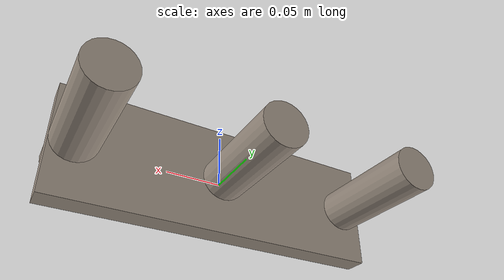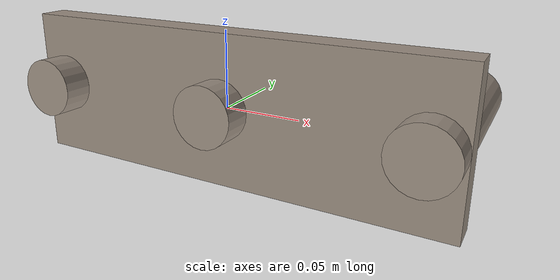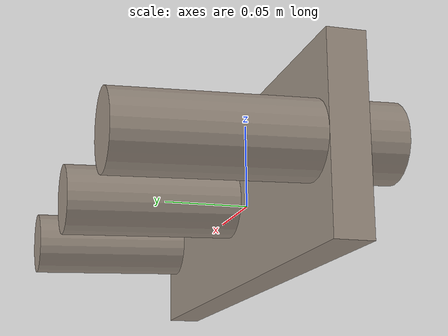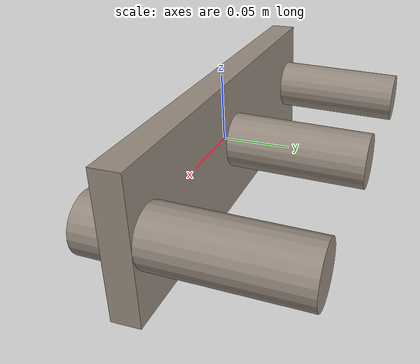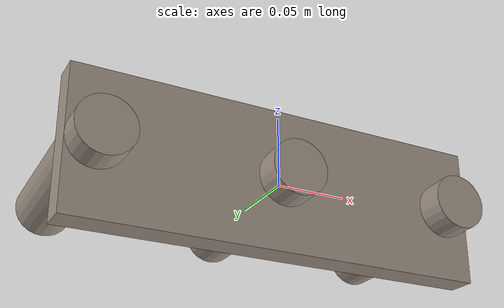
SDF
<?xml version='1.0'?>
<sdf version='1.7'>
  <model name='coat_rack1'>
    <link name='link_1'>
      <kinematic>1</kinematic>
      <inertial>
        <pose>0 0 -0.15 0 -0 0</pose>
        <inertia>
          <ixx>0.00541667</ixx>
          <iyy>0.0520833</iyy>
          <izz>0.0470833</izz>
          <ixy>0</ixy>
          <ixz>0</ixz>
          <iyz>0</iyz>
        </inertia>
        <mass>1</mass>
      </inertial>
      <self_collide>0</self_collide>
      <enable_wind>0</enable_wind>
      <pose>0 0 0 0 -0 0</pose>
      <gravity>1</gravity>
      <visual name='ModelPreview_6::link_1::visual_3'>
        <pose>0.13 0.04 0 -1.6 0 0</pose>
        <geometry>
          <cylinder>
            <radius>0.02</radius>
            <length>0.14</length>
          </cylinder>
        </geometry>
        <material>
          <ambient>0.3 0.85 0.5 1</ambient>
          <diffuse>0.6 0.55 0.5 1</diffuse>
          <shader type='pixel'>
            <normal_map>__default__</normal_map>
          </shader>
          <script>
            <name>ModelPreview_6::link_1::visual2_MATERIAL_</name>
            <uri>__default__</uri>
          </script>
          <specular>0 0 0 1</specular>
          <emissive>0 0 0 1</emissive>
        </material>
        <transparency>0</transparency>
        <cast_shadows>1</cast_shadows>
      </visual>
      <visual name='visual1'>
        <geometry>
          <box>
            <size>0.3 0.02 0.1</size>
          </box>
        </geometry>
        <material>
          <ambient>0.3 0.85 0.5 1</ambient>
          <diffuse>0.6 0.55 0.5 1</diffuse>
          <shader type='pixel'>
            <normal_map>__default__</normal_map>
          </shader>
          <script>
            <name>ModelPreview_6::link_1::visual1_MATERIAL_</name>
            <uri>__default__</uri>
          </script>
          <specular>0 0 0 1</specular>
          <emissive>0 0 0 1</emissive>
        </material>
        <pose>0 0 0 0 -0 0</pose>
        <transparency>0</transparency>
        <cast_shadows>1</cast_shadows>
      </visual>
      <visual name='ModelPreview_6::link_1::visual_2'>
        <pose>0 0.04 0 -1.6 0 0</pose>
        <geometry>
          <cylinder>
            <radius>0.02</radius>
            <length>0.14</length>
          </cylinder>
        </geometry>
        <material>
          <ambient>0.3 0.85 0.5 1</ambient>
          <diffuse>0.6 0.55 0.5 1</diffuse>
          <shader type='pixel'>
            <normal_map>__default__</normal_map>
          </shader>
          <script>
            <name>ModelPreview_6::link_1::visual2_MATERIAL_</name>
            <uri>__default__</uri>
          </script>
          <specular>0 0 0 1</specular>
          <emissive>0 0 0 1</emissive>
        </material>
        <transparency>0</transparency>
        <cast_shadows>1</cast_shadows>
      </visual>
      <visual name='visual2'>
        <pose>-0.13 0.04 0 -1.6 0 0</pose>
        <geometry>
          <cylinder>
            <radius>0.02</radius>
            <length>0.14</length>
          </cylinder>
        </geometry>
        <material>
          <ambient>0.3 0.85 0.5 1</ambient>
          <diffuse>0.6 0.55 0.5 1</diffuse>
          <shader type='pixel'>
            <normal_map>__default__</normal_map>
          </shader>
          <script>
            <name>ModelPreview_6::link_1::visual2_MATERIAL_</name>
            <uri>__default__</uri>
          </script>
          <specular>0 0 0 1</specular>
          <emissive>0 0 0 1</emissive>
        </material>
        <transparency>0</transparency>
        <cast_shadows>1</cast_shadows>
      </visual>
      <collision name='collision_9'>
        <laser_retro>0</laser_retro>
        <max_contacts>10</max_contacts>
        <pose>0.13 0.04 0 -1.6 0 0</pose>
        <geometry>
          <cylinder>
            <radius>0.02</radius>
            <length>0.14</length>
          </cylinder>
        </geometry>
        <surface>
          <friction>
            <ode>
              <mu>1</mu>
              <mu2>1</mu2>
              <fdir1>0 0 0</fdir1>
              <slip1>0</slip1>
              <slip2>0</slip2>
            </ode>
          </friction>
          <bounce>
            <restitution_coefficient>0</restitution_coefficient>
            <threshold>1e+06</threshold>
          </bounce>
          <contact>
            <collide_without_contact>0</collide_without_contact>
            <collide_without_contact_bitmask>1</collide_without_contact_bitmask>
            <collide_bitmask>1</collide_bitmask>
            <ode>
              <soft_cfm>0</soft_cfm>
              <soft_erp>0.2</soft_erp>
              <kp>1e+13</kp>
              <kd>1</kd>
              <max_vel>0.01</max_vel>
              <min_depth>0</min_depth>
            </ode>
            <bullet>
              <split_impulse>1</split_impulse>
              <split_impulse_penetration_threshold>-0.01</split_impulse_penetration_threshold>
              <soft_cfm>0</soft_cfm>
              <soft_erp>0.2</soft_erp>
              <kp>1e+13</kp>
              <kd>1</kd>
            </bullet>
          </contact>
        </surface>
      </collision>
      <collision name='collision_6'>
        <laser_retro>0</laser_retro>
        <max_contacts>10</max_contacts>
        <pose>0 0 0 0 -0 0</pose>
        <geometry>
          <box>
            <size>0.3 0.02 0.1</size>
          </box>
        </geometry>
        <surface>
          <friction>
            <ode>
              <mu>1</mu>
              <mu2>1</mu2>
              <fdir1>0 0 0</fdir1>
              <slip1>0</slip1>
              <slip2>0</slip2>
            </ode>
            <torsional>
            </torsional>
          </friction>
          <bounce>
            <restitution_coefficient>0</restitution_coefficient>
            <threshold>1e+06</threshold>
          </bounce>
          <contact>
            <collide_without_contact>0</collide_without_contact>
            <collide_without_contact_bitmask>1</collide_without_contact_bitmask>
            <collide_bitmask>1</collide_bitmask>
            <ode>
              <soft_cfm>0</soft_cfm>
              <soft_erp>0.2</soft_erp>
              <kp>1e+13</kp>
              <kd>1</kd>
              <max_vel>0.01</max_vel>
              <min_depth>0</min_depth>
            </ode>
            <bullet>
              <split_impulse>1</split_impulse>
              <split_impulse_penetration_threshold>-0.01</split_impulse_penetration_threshold>
              <soft_cfm>0</soft_cfm>
              <soft_erp>0.2</soft_erp>
              <kp>1e+13</kp>
              <kd>1</kd>
            </bullet>
          </contact>
        </surface>
      </collision>
      <collision name='collision_8'>
        <laser_retro>0</laser_retro>
        <max_contacts>10</max_contacts>
        <pose>0 0.04 0 -1.6 0 0</pose>
        <geometry>
          <cylinder>
            <radius>0.02</radius>
            <length>0.14</length>
          </cylinder>
        </geometry>
        <surface>
          <friction>
            <ode>
              <mu>1</mu>
              <mu2>1</mu2>
              <fdir1>0 0 0</fdir1>
              <slip1>0</slip1>
              <slip2>0</slip2>
            </ode>
          </friction>
          <bounce>
            <restitution_coefficient>0</restitution_coefficient>
            <threshold>1e+06</threshold>
          </bounce>
          <contact>
            <collide_without_contact>0</collide_without_contact>
            <collide_without_contact_bitmask>1</collide_without_contact_bitmask>
            <collide_bitmask>1</collide_bitmask>
            <ode>
              <soft_cfm>0</soft_cfm>
              <soft_erp>0.2</soft_erp>
              <kp>1e+13</kp>
              <kd>1</kd>
              <max_vel>0.01</max_vel>
              <min_depth>0</min_depth>
            </ode>
            <bullet>
              <split_impulse>1</split_impulse>
              <split_impulse_penetration_threshold>-0.01</split_impulse_penetration_threshold>
              <soft_cfm>0</soft_cfm>
              <soft_erp>0.2</soft_erp>
              <kp>1e+13</kp>
              <kd>1</kd>
            </bullet>
          </contact>
        </surface>
      </collision>
      <collision name='collision_7'>
        <laser_retro>0</laser_retro>
        <max_contacts>10</max_contacts>
        <pose>-0.13 0.04 0 -1.6 0 0</pose>
        <geometry>
          <cylinder>
            <radius>0.02</radius>
            <length>0.14</length>
          </cylinder>
        </geometry>
        <surface>
          <friction>
            <ode>
              <mu>1</mu>
              <mu2>1</mu2>
              <fdir1>0 0 0</fdir1>
              <slip1>0</slip1>
              <slip2>0</slip2>
            </ode>
          </friction>
          <bounce>
            <restitution_coefficient>0</restitution_coefficient>
            <threshold>1e+06</threshold>
          </bounce>
          <contact>
            <collide_without_contact>0</collide_without_contact>
            <collide_without_contact_bitmask>1</collide_without_contact_bitmask>
            <collide_bitmask>1</collide_bitmask>
            <ode>
              <soft_cfm>0</soft_cfm>
              <soft_erp>0.2</soft_erp>
              <kp>1e+13</kp>
              <kd>1</kd>
              <max_vel>0.01</max_vel>
              <min_depth>0</min_depth>
            </ode>
            <bullet>
              <split_impulse>1</split_impulse>
              <split_impulse_penetration_threshold>-0.01</split_impulse_penetration_threshold>
              <soft_cfm>0</soft_cfm>
              <soft_erp>0.2</soft_erp>
              <kp>1e+13</kp>
              <kd>1</kd>
            </bullet>
          </contact>
        </surface>
      </collision>
    </link>
    <static>0</static>
    <allow_auto_disable>1</allow_auto_disable>
  </model>
</sdf>
